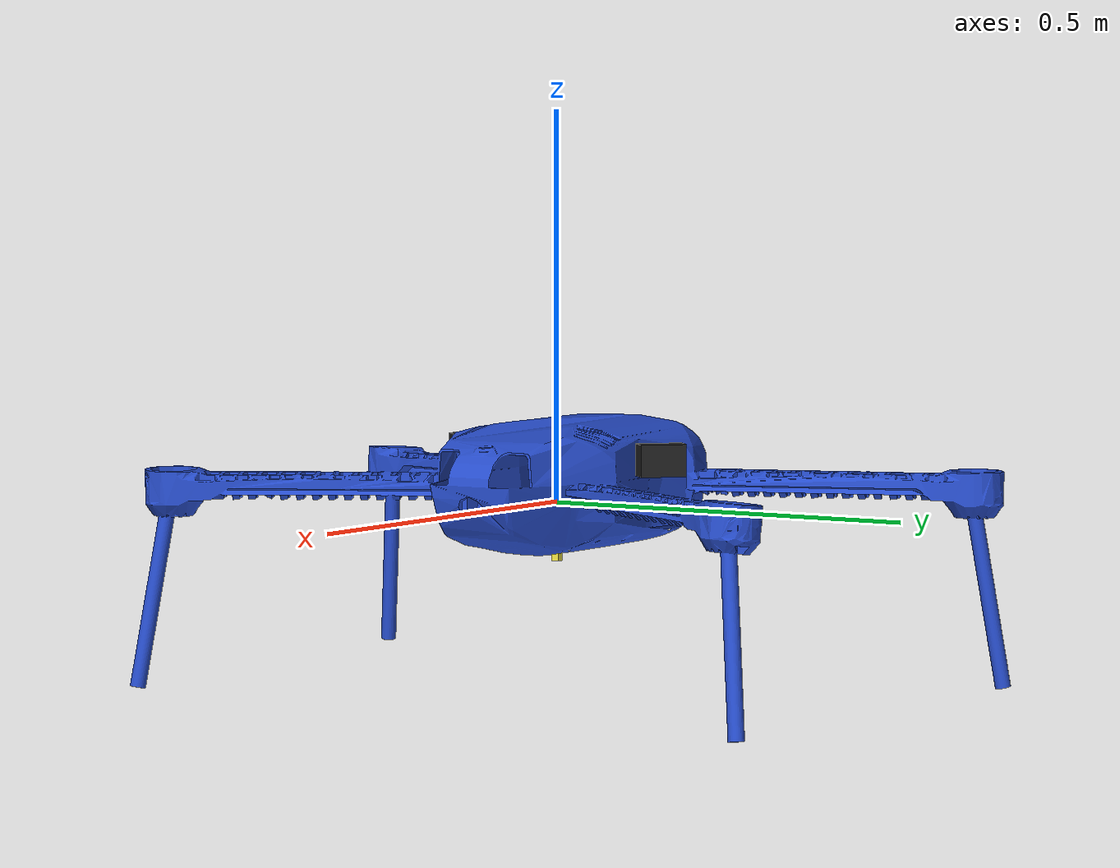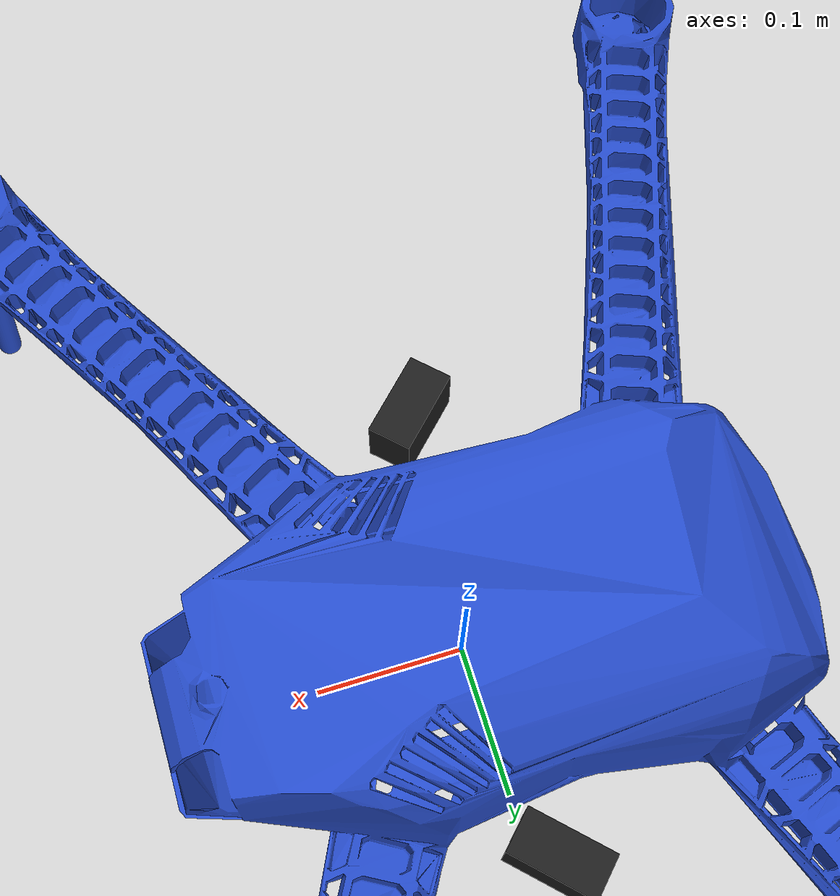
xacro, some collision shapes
<?xml version="1.0"?>
<robot
  name="iris"
  xmlns:xacro="http://ros.org/wiki/xacro"
>

	<xacro:include filename="iris_base.urdf.xacro" />
	<xacro:iris_base name="iris_base">
		<origin xyz="0 0 0" rpy="0 0 0"/>
	</xacro:iris_base>

	<!-- MAPIR cameras -->
	<xacro:include filename="generic_camera.urdf.xacro" />
	<xacro:generic_camera name="left_camera" parent="base_link" ros_topic="camera_image" cam_info_topic="camera_info" update_rate="30" res_x="4608" res_y="3456" image_format="R8G8B8" hfov="${0.6/M_PI * 180.0}">
		<origin xyz="-0.01 0.15 0.06" rpy="0 ${-M_PI/1050} ${M_PI/4}"/>
	</xacro:generic_camera>

	<xacro:generic_camera name="right_camera" parent="base_link" ros_topic="camera_image" cam_info_topic="camera_info" update_rate="30" res_x="4608" res_y="3456" image_format="R8G8B8" hfov="${0.6/M_PI * 180.0}">
		<origin xyz="-0.01 -0.15 0.06" rpy="0 ${-M_PI/1050} ${-M_PI/4}"/>
	</xacro:generic_camera>

	<!-- Sonar Range Finder -->
	<xacro:include filename="sonar_sensor.urdf.xacro" />
	<xacro:sonar_sensor name="sonar" parent="base_link" ros_topic="sonar_distance" update_rate="40" min_range="0.01" max_range="25.0" field_of_view="0.01" ray_count="1">
		<origin xyz="-0.0 0.0 -0.07" rpy="0 ${M_PI/2} 0"/>
	</xacro:sonar_sensor>

</robot>

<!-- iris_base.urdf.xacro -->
<robot name="iris"  xmlns:xacro="http://ros.org/wiki/xacro">

	<xacro:macro name="iris_base" params="name">

		<link name="base_link">
			<collision name='body'>
				<geometry>
					<mesh filename="package://uri_gazebo/meshes/iris_collision.dae" scale="1 1 1" />
				</geometry>
			</collision>
			<visual name='body'>
				<geometry>
					<mesh filename="package://uri_gazebo/meshes/iris.dae" scale="1 1 1" />
				</geometry>
			</visual>
		</link>

		<gazebo reference="base_link">
			<material>URI/Blue</material>
		</gazebo>
	</xacro:macro>

</robot>

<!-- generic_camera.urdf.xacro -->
<robot xmlns:xacro="http://www.ros.org/wiki/xacro">

<xacro:property name="M_PI" value="3.1415926535897931" />

<xacro:macro name="generic_camera" params="name parent *origin ros_topic cam_info_topic update_rate res_x res_y image_format hfov">
	<joint name="${name}_joint" type="fixed">
		<xacro:insert_block name="origin" />
		<parent link="${parent}"/>
		<child link="${name}_link"/>
	</joint>

	<link name="${name}_link">
		<inertial>
			<mass value="0.001" />
			<origin xyz="0 0 0" rpy="0 0 0" />
			<inertia ixx="0.0001" ixy="0" ixz="0" iyy="0.0001" iyz="0" izz="0.0001" />
		</inertial>
		<visual>
			<origin xyz="0 0 0" rpy="0 0 0" />
			<geometry>
				<box size="0.030 0.059 0.041" />
			</geometry>
		</visual>
		<collision>
			<origin xyz="0 0 0" rpy="0 0 0" />
			<geometry>
				<box size="0.030 0.059 0.041" />
			</geometry>
		</collision>
	</link>

	<gazebo reference="${name}_link">
		<material>URI/Black</material>
		<sensor type="camera" name="${name}_camera_sensor">
			<update_rate>${update_rate}</update_rate>
			<camera>
				<horizontal_fov>${hfov * M_PI/180.0}</horizontal_fov>
				<image>
					<format>${image_format}</format>
					<width>${res_x}</width>
					<height>${res_y}</height>
				</image>
				<clip>
					<near>0.01</near>
					<far>100</far>
				</clip>
			</camera>

			<plugin name="${name}_camera_controller" filename="libgazebo_ros_camera.so">
				<cameraName>${name}</cameraName>
				<imageTopicName>${ros_topic}</imageTopicName>
				<cameraInfoTopicName>${cam_info_topic}</cameraInfoTopicName>
				<frameName>${name}_optical_frame</frameName>
			</plugin>
		</sensor>
	</gazebo>
</xacro:macro>

</robot>

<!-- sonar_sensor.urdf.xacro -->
<robot xmlns:xacro="http://www.ros.org/wiki/xacro">
<xacro:macro name="sonar_sensor" params="name parent *origin ros_topic update_rate min_range max_range field_of_view ray_count">
	<joint name="${name}_joint" type="fixed">
		<xacro:insert_block name="origin" />
		<parent link="${parent}"/>
		<child link="${name}_link"/>
	</joint>

	<link name="${name}_link">
		<inertial>
			<mass value="0.001" />
			<origin xyz="0 0 0" rpy="0 0 0" />
			<inertia ixx="0.000000017" ixy="0" ixz="0" iyy="0.000000017" iyz="0" izz="0.000000017" />
		</inertial>
		<visual>
			<origin xyz="0 0 0" rpy="0 0 0" />
			<geometry>
				<mesh filename="package://hector_sensors_description/meshes/sonar_sensor/max_sonar_ez4.dae"/>
			</geometry>
		</visual>
		<collision>
			<origin xyz="0 0 0" rpy="0 0 0" />
			<geometry>
				<box size="0.01 0.01 0.01" />
			</geometry>
		</collision>
	</link>

	<gazebo reference="${name}_link">
		<sensor type="ray" name="${name}">
			<always_on>true</always_on>
			<update_rate>${update_rate}</update_rate>
			<pose>0 0 0 0 0 0</pose>
			<visualize>false</visualize>
			<ray>
				<scan>
					<horizontal>
						<samples>${ray_count}</samples>
						<resolution>1</resolution>
						<min_angle>-${field_of_view/2}</min_angle>
						<max_angle> ${field_of_view/2}</max_angle>
					</horizontal>
					<vertical>
						<samples>${ray_count}</samples>
						<resolution>1</resolution>
						<min_angle>-${field_of_view/2}</min_angle>
						<max_angle> ${field_of_view/2}</max_angle>
					</vertical>
				</scan>
				<range>
					<min>${min_range}</min>
					<max>${max_range}</max>
					<resolution>0.01</resolution>
				</range>
			</ray>

			<plugin name="gazebo_ros_${name}_controller" filename="libhector_gazebo_ros_sonar.so">
				<gaussianNoise>0.005</gaussianNoise>
				<topicName>${ros_topic}</topicName>
				<frameId>${name}_link</frameId>
			</plugin>
		</sensor>
	</gazebo>
</xacro:macro>
</robot>
